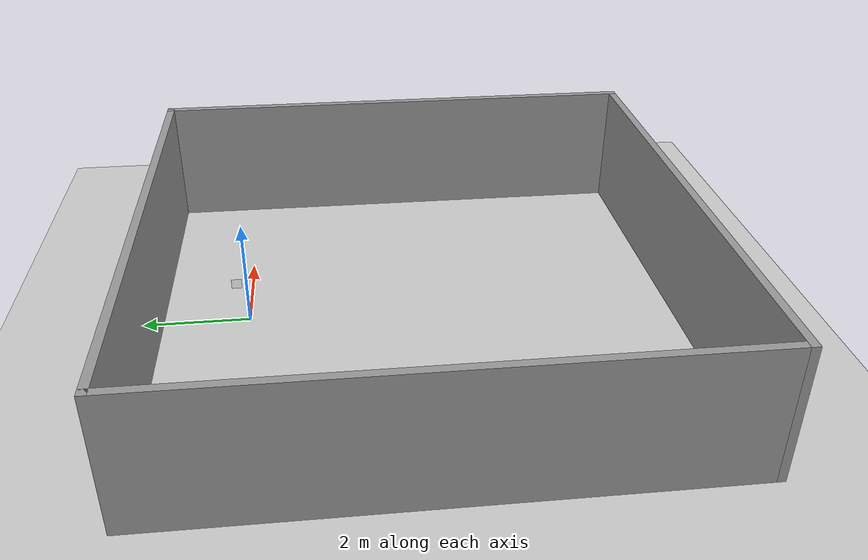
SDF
<sdf version="1.6">
 <world name="default">
  <light name="sun" type="directional">
   <pose>0 0 10 0 -0 0</pose>
   <diffuse>0.8 0.8 0.8 1</diffuse>
   <specular>0.2 0.2 0.2 1</specular>
   <attenuation>
    <range>1000</range>
    <constant>0.9</constant>
    <linear>0.01</linear>
    <quadratic>0.001</quadratic>
   </attenuation>
   <direction>-0.5 0.1 -0.9</direction>
  </light>
  <model name="ground_plane">
   <static>1</static>
   <link name="link">
    <collision name="collision">
     <geometry><plane><normal>0 0 1</normal><size>100 100</size></plane></geometry>
     <surface>
      <contact><collide_bitmask>65535</collide_bitmask></contact>
      <friction><ode><mu>100</mu><mu2>50</mu2></ode></friction>
     </surface>
    </collision>
    <visual name="visual">
     <cast_shadows>0</cast_shadows>
     <geometry><plane><normal>0 0 1</normal><size>100 100</size></plane></geometry>
     <material>
      <script><uri>file://media/materials/scripts/gazebo.material</uri><name>Gazebo/Grey</name></script>
     </material>
    </visual>
   </link>
  </model>
  <gravity>0 0 -9.8</gravity>
  <magnetic_field>6e-06 2.3e-05 -4.2e-05</magnetic_field>
  <atmosphere type="adiabatic"/>
  <physics name="default_physics" default="0" type="ode">
   <max_step_size>0.001</max_step_size>
   <real_time_factor>1</real_time_factor>
   <real_time_update_rate>1000</real_time_update_rate>
  </physics>
  <scene><ambient>0.4 0.4 0.4 1</ambient><background>0.7 0.7 0.7 1</background><shadows>1</shadows></scene>
  <audio><device>default</device></audio>
  <spherical_coordinates>
   <surface_model>EARTH_WGS84</surface_model>
   <latitude_deg>0</latitude_deg>
   <longitude_deg>0</longitude_deg>
   <elevation>0</elevation>
   <heading_deg>0</heading_deg>
  </spherical_coordinates>
  <model name="world">
   <pose>-0.267109 -3.23228 0 0 -0 0</pose>
   <link name="Wall_2">
    <collision name="Wall_2_Collision">
     <geometry><box><size>10 0.15 2.5</size></box></geometry>
     <pose>0 0 1.25 0 -0 0</pose>
    </collision>
    <visual name="Wall_2_Visual">
     <pose>0 0 1.25 0 -0 0</pose>
     <geometry><box><size>10 0.15 2.5</size></box></geometry>
     <material>
      <script><uri>file://media/materials/scripts/gazebo.material</uri><name>Gazebo/Grey</name></script>
      <ambient>1 1 1 1</ambient>
     </material>
     <meta><layer>0</layer></meta>
    </visual>
    <pose>-0 4.925 0 0 -0 0</pose>
   </link>
   <link name="Wall_3">
    <collision name="Wall_3_Collision">
     <geometry><box><size>10 0.15 2.5</size></box></geometry>
     <pose>0 0 1.25 0 -0 0</pose>
    </collision>
    <visual name="Wall_3_Visual">
     <pose>0 0 1.25 0 -0 0</pose>
     <geometry><box><size>10 0.15 2.5</size></box></geometry>
     <material>
      <script><uri>file://media/materials/scripts/gazebo.material</uri><name>Gazebo/Grey</name></script>
      <ambient>1 1 1 1</ambient>
     </material>
     <meta><layer>0</layer></meta>
    </visual>
    <pose>4.925 0 0 0 -0 -1.5708</pose>
   </link>
   <link name="Wall_4">
    <collision name="Wall_4_Collision">
     <geometry><box><size>10 0.15 2.5</size></box></geometry>
     <pose>0 0 1.25 0 -0 0</pose>
    </collision>
    <visual name="Wall_4_Visual">
     <pose>0 0 1.25 0 -0 0</pose>
     <geometry><box><size>10 0.15 2.5</size></box></geometry>
     <material>
      <script><uri>file://media/materials/scripts/gazebo.material</uri><name>Gazebo/Grey</name></script>
      <ambient>1 1 1 1</ambient>
     </material>
     <meta><layer>0</layer></meta>
    </visual>
    <pose>-0 -4.925 0 0 -0 3.14159</pose>
   </link>
   <link name="Wall_5">
    <collision name="Wall_5_Collision">
     <geometry><box><size>10 0.15 2.5</size></box></geometry>
     <pose>0 0 1.25 0 -0 0</pose>
    </collision>
    <visual name="Wall_5_Visual">
     <pose>0 0 1.25 0 -0 0</pose>
     <geometry><box><size>10 0.15 2.5</size></box></geometry>
     <material>
      <script><uri>file://media/materials/scripts/gazebo.material</uri><name>Gazebo/Grey</name></script>
      <ambient>1 1 1 1</ambient>
     </material>
     <meta><layer>0</layer></meta>
    </visual>
    <pose>-4.925 0 0 0 -0 1.5708</pose>
   </link>
   <static>1</static>
  </model>
  <model name="aruco_visual_marker_4">
   <link name="marker">
    <visual name="visual">
     <geometry><box><size>0.2 0.2 1e-05</size></box></geometry>
     <material>
      <script>
       <uri>model://aruco_visual_marker_4/materials/scripts</uri>
       <uri>model://aruco_visual_marker_4/materials/textures</uri>
       <name>ArucoVisualMarker4/Marker</name>
      </script>
      <ambient>1 1 1 1</ambient>
      <diffuse>1 1 1 1</diffuse>
      <specular>0 0 0 1</specular>
      <emissive>1 1 1 0</emissive>
      <shader type="vertex"><normal_map>__default__</normal_map></shader>
     </material>
    </visual>
    <collision name="collision"><geometry><box><size>0.2 0.2 1e-05</size></box></geometry></collision>
   </link>
   <link name="marker_pad">
    <pose frame="marker">0 0 -1e-05 0 -0 0</pose>
    <visual name="visual">
     <geometry><box><size>0.2 0.2 1e-05</size></box></geometry>
     <material>
      <lighting>1</lighting>
      <script><uri>file://media/materials/scripts/gazebo.material</uri><name>Gazebo/White</name></script>
      <ambient>0.3 0.3 0.3 1</ambient>
      <diffuse>0.7 0.7 0.7 1</diffuse>
      <specular>0.01 0.01 0.01 1</specular>
      <emissive>1 1 1 0</emissive>
      <shader type="vertex"><normal_map>__default__</normal_map></shader>
     </material>
    </visual>
    <collision name="collision"><geometry><box><size>0.2 0.2 1e-05</size></box></geometry></collision>
   </link>
   <joint name="marker_JOINT_marker_pad" type="revolute">
    <parent>marker</parent>
    <child>marker_pad</child>
    <axis>
     <xyz>0 0 1</xyz>
     <limit><upper>0</upper><lower>0</lower></limit>
     <use_parent_model_frame>0</use_parent_model_frame>
     <dynamics><spring_reference>0</spring_reference><spring_stiffness>0</spring_stiffness></dynamics>
    </axis>
   </joint>
   <static>1</static>
   <pose>1 0.3 0.2 0 -1.57 0</pose>
   <plugin name="push_animate" filename="libbox_animator.so">
    <time_interval>40.0</time_interval>
    <num_positions>4</num_positions>
    <height>0.2</height>
    <pitch>-1.57</pitch>
    <roll>0</roll>
    <positions>1 0 0  3 -3 -1.57  0 -6 -3.14 -3 -3 -4.71  1 0 -6.28</positions>
   </plugin>
  </model>
 </world>
</sdf>
